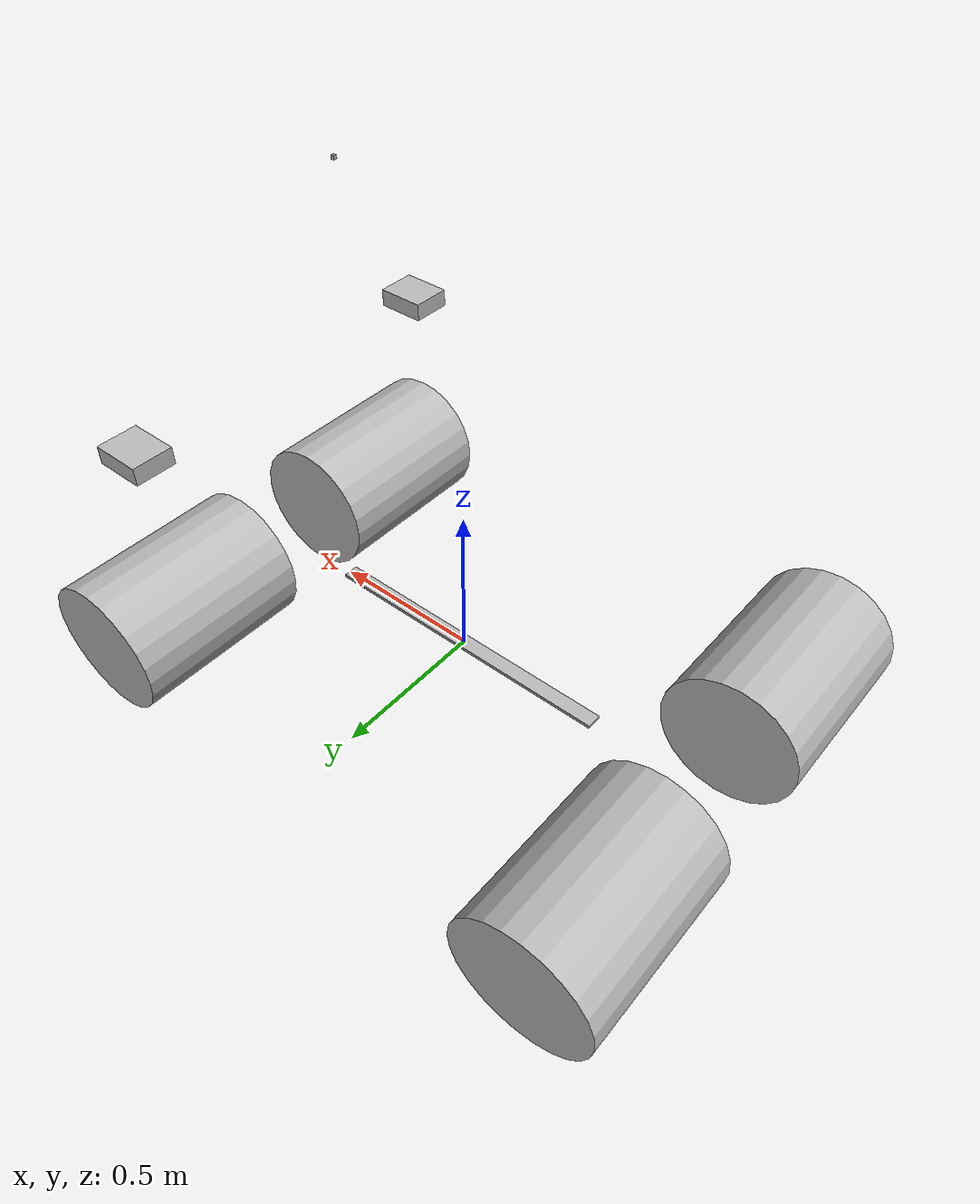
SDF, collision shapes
<?xml version='1.0'?>
<sdf version='1.7'>
  <model name='golfinho'>
    <link name='base_link'>
      <inertial>
        <pose>9e-06 0 1e-05 0 -0 0</pose>
        <mass>320.004</mass>
        <inertia>
          <ixx>9.60649</ixx>
          <ixy>0</ixy>
          <ixz>-0.00173708</ixz>
          <iyy>74.3788</iyy>
          <iyz>0</iyz>
          <izz>83.9737</izz>
        </inertia>
      </inertial>
      <velocity_decay/>
      <velocity_decay/>
      <gravity>1</gravity>
      <sensor name='twr_imu' type='imu'>
        <always_on>1</always_on>
        <update_rate>100</update_rate>
        <visualize>1</visualize>
        <imu>
          <angular_velocity>
            <x>
              <noise type='gaussian'>
                <mean>0</mean>
                <stddev>0.0002</stddev>
              </noise>
            </x>
            <y>
              <noise type='gaussian'>
                <mean>0</mean>
                <stddev>0.0002</stddev>
              </noise>
            </y>
            <z>
              <noise type='gaussian'>
                <mean>0</mean>
                <stddev>0.0002</stddev>
              </noise>
            </z>
          </angular_velocity>
          <linear_acceleration>
            <x>
              <noise type='gaussian'>
                <mean>0</mean>
                <stddev>0.017</stddev>
              </noise>
            </x>
            <y>
              <noise type='gaussian'>
                <mean>0</mean>
                <stddev>0.017</stddev>
              </noise>
            </y>
            <z>
              <noise type='gaussian'>
                <mean>0</mean>
                <stddev>0.017</stddev>
              </noise>
            </z>
          </linear_acceleration>
          <orientation>
            <x>
              <noise type='gaussian'>
                <mean>0.0</mean>
                <stddev>2e-3</stddev>
              </noise>
            </x>
            <y>
              <noise type='gaussian'>
                <mean>0.0</mean>
                <stddev>2e-3</stddev>
              </noise>
            </y>
            <z>
              <noise type='gaussian'>
                <mean>0.0</mean>
                <stddev>2e-3</stddev>
              </noise>
            </z>
          </orientation>
        </imu>
        <plugin name='two_wheeled_robot_imu' filename='libgazebo_ros_imu_sensor.so'>
          <initial_orientation_as_reference>0</initial_orientation_as_reference>
          <frame_name>imu_link</frame_name>
          <ros>
            <argument>~/out:=imu</argument>
          </ros>
        </plugin>
        <pose>-0.1 0 0.05 3.14159 -1.24159 3.14159</pose>
      </sensor>
      <gravity>1</gravity>
      <velocity_decay/>
      <sensor name='block_laser_sensor' type='ray'>
        <visualize>1</visualize>
        <ray>
          <scan>
            <horizontal>
              <samples>200</samples>
              <resolution>1</resolution>
              <min_angle>-0.9</min_angle>
              <max_angle>0.9</max_angle>
            </horizontal>
            <vertical>
              <samples>4</samples>
              <resolution>1</resolution>
              <min_angle>0</min_angle>
              <max_angle>0.05</max_angle>
            </vertical>
          </scan>
          <range>
            <min>0.1</min>
            <max>10</max>
            <resolution>0.01</resolution>
          </range>
        </ray>
        <update_rate>30</update_rate>
        <plugin name='gazebo_ros_block_laser_controller' filename='libgazebo_ros_ray_sensor.so'>
          <ros>
            <argument>~/out:=points2</argument>
          </ros>
          <output_type>sensor_msgs/PointCloud2</output_type>
          <topicName>points2</topicName>
          <frameName>four_layer</frameName>
          <min_intensity>100.0</min_intensity>
        </plugin>
        <pose>1.05 0 0.1 0 -0 0</pose>
      </sensor>
      <self_collide>0</self_collide>
      <enable_wind>0</enable_wind>
      <kinematic>0</kinematic>
      <plugin filename='libgazebo_ros_p3d.so' name='gps'>
        <ros>
          <argument>~/out:=gps</argument>
        </ros>
        <frame_name>map</frame_name>
        <body_name>base_link</body_name>
        <output_type>nav_msgs/Odometry</output_type>
        <update_rate>100.0</update_rate>
        <gaussian_noise>0.0</gaussian_noise>
      </plugin>
      <pose>0 0 0 0 -0 0</pose>
      <visual name='base_link_fixed_joint_lump__visual_0_visual'>
        <pose>-0.08 0 -0.2 0 -0 1.5708</pose>
        <geometry>
          <mesh>
            <scale>0.98 0.85 0.9</scale>
            <uri>file:////home/robsic/golfinho/install/golfinho_model/share/golfinho_model/meshes/base_link.dae</uri>
          </mesh>
        </geometry>
        <material>
          <shader type='pixel'/>
        </material>
        <transparency>0</transparency>
        <cast_shadows>1</cast_shadows>
      </visual>
      <visual name='base_link_fixed_joint_lump__visual_visual_1'>
        <pose>0.4 0 1.4 0 -0 0</pose>
        <geometry>
          <box>
            <size>0.01 0.01 0.01</size>
          </box>
        </geometry>
        <material>
          <shader type='pixel'/>
        </material>
        <transparency>0</transparency>
        <cast_shadows>1</cast_shadows>
      </visual>
      <visual name='base_link_fixed_joint_lump__visual_link_r_visual_2'>
        <pose>1 0 0.03 0 -0 0</pose>
        <geometry>
          <mesh>
            <scale>0.05 0.05 0.05</scale>
            <uri>file:////home/robsic/golfinho/install/golfinho_model/share/golfinho_model/meshes/sick_4camadas.dae</uri>
          </mesh>
        </geometry>
        <material>
          <shader type='pixel'/>
        </material>
        <transparency>0</transparency>
        <cast_shadows>1</cast_shadows>
      </visual>
      <visual name='base_link_fixed_joint_lump__visual_link_l_visual_3'>
        <pose>0.68 0.55 0.59 0 -0 0.7854</pose>
        <geometry>
          <mesh>
            <scale>0.0005 0.0005 0.0005</scale>
            <uri>file:////home/robsic/golfinho/install/golfinho_model/share/golfinho_model/meshes/sick_270.dae</uri>
          </mesh>
        </geometry>
        <material>
          <shader type='pixel'/>
        </material>
        <transparency>0</transparency>
        <cast_shadows>1</cast_shadows>
      </visual>
      <visual name='base_link_fixed_joint_lump__visual_link_r_visual_4'>
        <pose>0.68 -0.55 0.59 0 0 -0.7854</pose>
        <geometry>
          <mesh>
            <scale>0.0005 0.0005 0.0005</scale>
            <uri>/home/robsic/golfinho/install/golfinho_model/share/golfinho_model/meshes/sick_270.dae</uri>
          </mesh>
        </geometry>
        <material>
          <shader type='pixel'/>
        </material>
        <transparency>0</transparency>
        <cast_shadows>1</cast_shadows>
      </visual>
      <collision name='base_link_fixed_joint_lump__collision_collision'>
        <laser_retro>0</laser_retro>
        <max_contacts>10</max_contacts>
        <pose>0 0 0 0 -0 0</pose>
        <geometry>
          <box>
            <size>1 0.05 0.01</size>
          </box>
        </geometry>
        <surface>
          <friction>
            <ode>
              <mu>1</mu>
              <mu2>1</mu2>
              <fdir1>0 0 0</fdir1>
              <slip1>0</slip1>
              <slip2>0</slip2>
            </ode>
            <torsional>
              <coefficient>1</coefficient>
              <patch_radius>0</patch_radius>
              <surface_radius>0</surface_radius>
              <use_patch_radius>1</use_patch_radius>
              <ode>
                <slip>0</slip>
              </ode>
            </torsional>
          </friction>
          <bounce>
            <restitution_coefficient>0</restitution_coefficient>
            <threshold>1e+06</threshold>
          </bounce>
          <contact>
            <collide_without_contact>0</collide_without_contact>
            <collide_without_contact_bitmask>1</collide_without_contact_bitmask>
            <collide_bitmask>1</collide_bitmask>
            <ode>
              <soft_cfm>0</soft_cfm>
              <soft_erp>0.2</soft_erp>
              <kp>1e+13</kp>
              <kd>1</kd>
              <max_vel>0.01</max_vel>
              <min_depth>0</min_depth>
            </ode>
            <bullet>
              <split_impulse>1</split_impulse>
              <split_impulse_penetration_threshold>-0.01</split_impulse_penetration_threshold>
              <soft_cfm>0</soft_cfm>
              <soft_erp>0.2</soft_erp>
              <kp>1e+13</kp>
              <kd>1</kd>
            </bullet>
          </contact>
        </surface>
      </collision>
      <collision name='base_link_fixed_joint_lump__collision_collision_1'>
        <laser_retro>0</laser_retro>
        <max_contacts>10</max_contacts>
        <pose>0.4 0 1.4 0 -0 0</pose>
        <geometry>
          <box>
            <size>0.01 0.01 0.01</size>
          </box>
        </geometry>
        <surface>
          <friction>
            <ode>
              <mu>1</mu>
              <mu2>1</mu2>
              <fdir1>0 0 0</fdir1>
              <slip1>0</slip1>
              <slip2>0</slip2>
            </ode>
            <torsional>
              <coefficient>1</coefficient>
              <patch_radius>0</patch_radius>
              <surface_radius>0</surface_radius>
              <use_patch_radius>1</use_patch_radius>
              <ode>
                <slip>0</slip>
              </ode>
            </torsional>
          </friction>
          <bounce>
            <restitution_coefficient>0</restitution_coefficient>
            <threshold>1e+06</threshold>
          </bounce>
          <contact>
            <collide_without_contact>0</collide_without_contact>
            <collide_without_contact_bitmask>1</collide_without_contact_bitmask>
            <collide_bitmask>1</collide_bitmask>
            <ode>
              <soft_cfm>0</soft_cfm>
              <soft_erp>0.2</soft_erp>
              <kp>1e+13</kp>
              <kd>1</kd>
              <max_vel>0.01</max_vel>
              <min_depth>0</min_depth>
            </ode>
            <bullet>
              <split_impulse>1</split_impulse>
              <split_impulse_penetration_threshold>-0.01</split_impulse_penetration_threshold>
              <soft_cfm>0</soft_cfm>
              <soft_erp>0.2</soft_erp>
              <kp>1e+13</kp>
              <kd>1</kd>
            </bullet>
          </contact>
        </surface>
      </collision>
      <collision name='base_link_fixed_joint_lump__collision_link_l_collision_2'>
        <laser_retro>0</laser_retro>
        <max_contacts>10</max_contacts>
        <pose>0.68 0.55 0.71 0 -0 0</pose>
        <geometry>
          <box>
            <size>0.153353 0.126857 0.054761</size>
          </box>
        </geometry>
        <surface>
          <friction>
            <ode>
              <mu>1</mu>
              <mu2>1</mu2>
              <fdir1>0 0 0</fdir1>
              <slip1>0</slip1>
              <slip2>0</slip2>
            </ode>
            <torsional>
              <coefficient>1</coefficient>
              <patch_radius>0</patch_radius>
              <surface_radius>0</surface_radius>
              <use_patch_radius>1</use_patch_radius>
              <ode>
                <slip>0</slip>
              </ode>
            </torsional>
          </friction>
          <bounce>
            <restitution_coefficient>0</restitution_coefficient>
            <threshold>1e+06</threshold>
          </bounce>
          <contact>
            <collide_without_contact>0</collide_without_contact>
            <collide_without_contact_bitmask>1</collide_without_contact_bitmask>
            <collide_bitmask>1</collide_bitmask>
            <ode>
              <soft_cfm>0</soft_cfm>
              <soft_erp>0.2</soft_erp>
              <kp>1e+13</kp>
              <kd>1</kd>
              <max_vel>0.01</max_vel>
              <min_depth>0</min_depth>
            </ode>
            <bullet>
              <split_impulse>1</split_impulse>
              <split_impulse_penetration_threshold>-0.01</split_impulse_penetration_threshold>
              <soft_cfm>0</soft_cfm>
              <soft_erp>0.2</soft_erp>
              <kp>1e+13</kp>
              <kd>1</kd>
            </bullet>
          </contact>
        </surface>
      </collision>
      <collision name='base_link_fixed_joint_lump__collision_link_r_collision_3'>
        <laser_retro>0</laser_retro>
        <max_contacts>10</max_contacts>
        <pose>0.68 -0.55 0.71 0 -0 0</pose>
        <geometry>
          <box>
            <size>0.153353 0.126857 0.054761</size>
          </box>
        </geometry>
        <surface>
          <friction>
            <ode>
              <mu>1</mu>
              <mu2>1</mu2>
              <fdir1>0 0 0</fdir1>
              <slip1>0</slip1>
              <slip2>0</slip2>
            </ode>
            <torsional>
              <coefficient>1</coefficient>
              <patch_radius>0</patch_radius>
              <surface_radius>0</surface_radius>
              <use_patch_radius>1</use_patch_radius>
              <ode>
                <slip>0</slip>
              </ode>
            </torsional>
          </friction>
          <bounce>
            <restitution_coefficient>0</restitution_coefficient>
            <threshold>1e+06</threshold>
          </bounce>
          <contact>
            <collide_without_contact>0</collide_without_contact>
            <collide_without_contact_bitmask>1</collide_without_contact_bitmask>
            <collide_bitmask>1</collide_bitmask>
            <ode>
              <soft_cfm>0</soft_cfm>
              <soft_erp>0.2</soft_erp>
              <kp>1e+13</kp>
              <kd>1</kd>
              <max_vel>0.01</max_vel>
              <min_depth>0</min_depth>
            </ode>
            <bullet>
              <split_impulse>1</split_impulse>
              <split_impulse_penetration_threshold>-0.01</split_impulse_penetration_threshold>
              <soft_cfm>0</soft_cfm>
              <soft_erp>0.2</soft_erp>
              <kp>1e+13</kp>
              <kd>1</kd>
            </bullet>
          </contact>
        </surface>
      </collision>
    </link>
    <link name='back_left_wheel'>
      <pose>-0.835 0.485 0 -1.5708 -0 -0</pose>
      <inertial>
        <pose>0 0 0 0 -0 0</pose>
        <mass>37.3751</mass>
        <inertia>
          <ixx>0.597613</ixx>
          <ixy>0</ixy>
          <ixz>0</ixz>
          <iyy>0.597613</iyy>
          <iyz>0</iyz>
          <izz>0.946058</izz>
        </inertia>
      </inertial>
      <gravity>1</gravity>
      <velocity_decay/>
      <self_collide>0</self_collide>
      <enable_wind>0</enable_wind>
      <kinematic>0</kinematic>
      <visual name='back_left_wheel_visual_0_visual'>
        <pose>0 0.38 0 1.5708 -0 0</pose>
        <geometry>
          <mesh>
            <scale>0.13 0.08 0.13</scale>
            <uri>file:////home/robsic/golfinho/install/golfinho_model/share/golfinho_model/meshes/wheel_.dae</uri>
          </mesh>
        </geometry>
        <material>
          <shader type='pixel'/>
        </material>
        <transparency>0</transparency>
        <cast_shadows>1</cast_shadows>
      </visual>
      <collision name='back_left_wheel_collision_collision'>
        <laser_retro>0</laser_retro>
        <max_contacts>10</max_contacts>
        <pose>0 0 0 0 -0 0</pose>
        <geometry>
          <cylinder>
            <radius>0.225</radius>
            <length>0.6</length>
          </cylinder>
        </geometry>
        <surface>
          <friction>
            <ode>
              <mu>1</mu>
              <mu2>1</mu2>
              <fdir1>0 0 0</fdir1>
              <slip1>0</slip1>
              <slip2>0</slip2>
            </ode>
            <torsional>
              <coefficient>1</coefficient>
              <patch_radius>0</patch_radius>
              <surface_radius>0</surface_radius>
              <use_patch_radius>1</use_patch_radius>
              <ode>
                <slip>0</slip>
              </ode>
            </torsional>
          </friction>
          <bounce>
            <restitution_coefficient>0</restitution_coefficient>
            <threshold>1e+06</threshold>
          </bounce>
          <contact>
            <collide_without_contact>0</collide_without_contact>
            <collide_without_contact_bitmask>1</collide_without_contact_bitmask>
            <collide_bitmask>1</collide_bitmask>
            <ode>
              <soft_cfm>0</soft_cfm>
              <soft_erp>0.2</soft_erp>
              <kp>1e+07</kp>
              <kd>1</kd>
              <max_vel>0.01</max_vel>
              <min_depth>0</min_depth>
            </ode>
            <bullet>
              <split_impulse>1</split_impulse>
              <split_impulse_penetration_threshold>-0.01</split_impulse_penetration_threshold>
              <soft_cfm>0</soft_cfm>
              <soft_erp>0.2</soft_erp>
              <kp>1e+07</kp>
              <kd>1</kd>
            </bullet>
          </contact>
        </surface>
      </collision>
    </link>
    <link name='back_right_wheel'>
      <pose>-0.835 -0.485 0 -1.5708 -0 -0</pose>
      <inertial>
        <pose>0 0 0 0 -0 0</pose>
        <mass>37.3751</mass>
        <inertia>
          <ixx>0.597613</ixx>
          <ixy>0</ixy>
          <ixz>0</ixz>
          <iyy>0.597613</iyy>
          <iyz>0</iyz>
          <izz>0.946058</izz>
        </inertia>
      </inertial>
      <gravity>1</gravity>
      <velocity_decay/>
      <self_collide>0</self_collide>
      <enable_wind>0</enable_wind>
      <kinematic>0</kinematic>
      <visual name='back_right_wheel_fixed_joint_lump__back_left_wheel_visual_0_visual'>
        <pose>0 -0.38 0 -1.5708 0 0</pose>
        <geometry>
          <mesh>
            <scale>0.13 0.08 0.13</scale>
            <uri>file:////home/robsic/golfinho/install/golfinho_model/share/golfinho_model/meshes/wheel_.dae</uri>
          </mesh>
        </geometry>
        <material>
          <shader type='pixel'/>
        </material>
        <transparency>0</transparency>
        <cast_shadows>1</cast_shadows>
      </visual>
      <collision name='back_right_wheel_collision_collision'>
        <laser_retro>0</laser_retro>
        <max_contacts>10</max_contacts>
        <pose>0 0 0 0 -0 0</pose>
        <geometry>
          <cylinder>
            <radius>0.225</radius>
            <length>0.6</length>
          </cylinder>
        </geometry>
        <surface>
          <friction>
            <ode>
              <mu>1</mu>
              <mu2>1</mu2>
              <fdir1>0 0 0</fdir1>
              <slip1>0</slip1>
              <slip2>0</slip2>
            </ode>
            <torsional>
              <coefficient>1</coefficient>
              <patch_radius>0</patch_radius>
              <surface_radius>0</surface_radius>
              <use_patch_radius>1</use_patch_radius>
              <ode>
                <slip>0</slip>
              </ode>
            </torsional>
          </friction>
          <bounce>
            <restitution_coefficient>0</restitution_coefficient>
            <threshold>1e+06</threshold>
          </bounce>
          <contact>
            <collide_without_contact>0</collide_without_contact>
            <collide_without_contact_bitmask>1</collide_without_contact_bitmask>
            <collide_bitmask>1</collide_bitmask>
            <ode>
              <soft_cfm>0</soft_cfm>
              <soft_erp>0.2</soft_erp>
              <kp>1e+07</kp>
              <kd>1</kd>
              <max_vel>0.01</max_vel>
              <min_depth>0</min_depth>
            </ode>
            <bullet>
              <split_impulse>1</split_impulse>
              <split_impulse_penetration_threshold>-0.01</split_impulse_penetration_threshold>
              <soft_cfm>0</soft_cfm>
              <soft_erp>0.2</soft_erp>
              <kp>1e+07</kp>
              <kd>1</kd>
            </bullet>
          </contact>
        </surface>
      </collision>
    </link>
    <link name='front_left_mount'>
      <pose>0.835 0.45 0 -1.5708 -0 -0</pose>
      <inertial>
        <pose>0 0 0 0 -0 0</pose>
        <mass>0.00064182</mass>
        <inertia>
          <ixx>2.11e-06</ixx>
          <ixy>0</ixy>
          <ixz>0</ixz>
          <iyy>2.11e-06</iyy>
          <iyz>0</iyz>
          <izz>2.7e-07</izz>
        </inertia>
      </inertial>
      <gravity>1</gravity>
      <velocity_decay/>
      <self_collide>0</self_collide>
      <enable_wind>0</enable_wind>
      <kinematic>0</kinematic>
      <visual name='front_left_mount_visual_visual'>
        <pose>0 0 0 1.5708 -0 0</pose>
        <geometry>
          <cylinder>
            <length>0.0001</length>
            <radius>0.0001</radius>
          </cylinder>
        </geometry>
        <material>
          <shader type='pixel'/>
        </material>
        <transparency>0</transparency>
        <cast_shadows>1</cast_shadows>
      </visual>
      <collision name='front_left_mount_collision_collision'>
        <laser_retro>0</laser_retro>
        <max_contacts>10</max_contacts>
        <pose>0 0 0 0 -0 0</pose>
        <geometry>
          <cylinder>
            <radius>0.115</radius>
            <length>0.072407</length>
          </cylinder>
        </geometry>
        <surface>
          <friction>
            <ode>
              <mu>1</mu>
              <mu2>1</mu2>
              <fdir1>0 0 0</fdir1>
              <slip1>0</slip1>
              <slip2>0</slip2>
            </ode>
            <torsional>
              <coefficient>1</coefficient>
              <patch_radius>0</patch_radius>
              <surface_radius>0</surface_radius>
              <use_patch_radius>1</use_patch_radius>
              <ode>
                <slip>0</slip>
              </ode>
            </torsional>
          </friction>
          <bounce>
            <restitution_coefficient>0</restitution_coefficient>
            <threshold>1e+06</threshold>
          </bounce>
          <contact>
            <collide_without_contact>0</collide_without_contact>
            <collide_without_contact_bitmask>1</collide_without_contact_bitmask>
            <collide_bitmask>1</collide_bitmask>
            <ode>
              <soft_cfm>0</soft_cfm>
              <soft_erp>0.2</soft_erp>
              <kp>1e+07</kp>
              <kd>1</kd>
              <max_vel>0.01</max_vel>
              <min_depth>0</min_depth>
            </ode>
            <bullet>
              <split_impulse>1</split_impulse>
              <split_impulse_penetration_threshold>-0.01</split_impulse_penetration_threshold>
              <soft_cfm>0</soft_cfm>
              <soft_erp>0.2</soft_erp>
              <kp>1e+07</kp>
              <kd>1</kd>
            </bullet>
          </contact>
        </surface>
      </collision>
    </link>
    <link name='front_left_wheel'>
      <pose>0.835 0.45 0 -1.5708 -0 -0</pose>
      <inertial>
        <pose>0 0 0 0 -0 0</pose>
        <mass>37.3751</mass>
        <inertia>
          <ixx>0.597613</ixx>
          <ixy>0</ixy>
          <ixz>0</ixz>
          <iyy>0.597613</iyy>
          <iyz>0</iyz>
          <izz>0.946058</izz>
        </inertia>
      </inertial>
      <gravity>1</gravity>
      <velocity_decay/>
      <self_collide>0</self_collide>
      <enable_wind>0</enable_wind>
      <kinematic>0</kinematic>
      <visual name='front_left_wheel_visual_0_visual'>
        <pose>0 -0.38 0 -1.5708 0 0</pose>
        <geometry>
          <mesh>
            <scale>0.13 0.08 0.13</scale>
            <uri>file:////home/robsic/golfinho/install/golfinho_model/share/golfinho_model/meshes/wheel_.dae</uri>
          </mesh>
        </geometry>
        <material>
          <shader type='pixel'/>
        </material>
        <transparency>0</transparency>
        <cast_shadows>1</cast_shadows>
      </visual>
      <collision name='front_left_wheel_collision_collision'>
        <laser_retro>0</laser_retro>
        <max_contacts>10</max_contacts>
        <pose>0 0 0 0 -0 0</pose>
        <geometry>
          <cylinder>
            <radius>0.225</radius>
            <length>0.6</length>
          </cylinder>
        </geometry>
        <surface>
          <friction>
            <ode>
              <mu>1</mu>
              <mu2>1</mu2>
              <fdir1>0 0 0</fdir1>
              <slip1>0</slip1>
              <slip2>0</slip2>
            </ode>
            <torsional>
              <coefficient>1</coefficient>
              <patch_radius>0</patch_radius>
              <surface_radius>0</surface_radius>
              <use_patch_radius>1</use_patch_radius>
              <ode>
                <slip>0</slip>
              </ode>
            </torsional>
          </friction>
          <bounce>
            <restitution_coefficient>0</restitution_coefficient>
            <threshold>1e+06</threshold>
          </bounce>
          <contact>
            <collide_without_contact>0</collide_without_contact>
            <collide_without_contact_bitmask>1</collide_without_contact_bitmask>
            <collide_bitmask>1</collide_bitmask>
            <ode>
              <soft_cfm>0</soft_cfm>
              <soft_erp>0.2</soft_erp>
              <kp>1e+07</kp>
              <kd>1</kd>
              <max_vel>0.01</max_vel>
              <min_depth>0</min_depth>
            </ode>
            <bullet>
              <split_impulse>1</split_impulse>
              <split_impulse_penetration_threshold>-0.01</split_impulse_penetration_threshold>
              <soft_cfm>0</soft_cfm>
              <soft_erp>0.2</soft_erp>
              <kp>1e+07</kp>
              <kd>1</kd>
            </bullet>
          </contact>
        </surface>
      </collision>
    </link>
    <link name='front_right_mount'>
      <pose>0.835 -0.45 -0 -1.5708 -0 -0</pose>
      <inertial>
        <pose>0 0 0 0 -0 0</pose>
        <mass>0.00064182</mass>
        <inertia>
          <ixx>2.11e-06</ixx>
          <ixy>0</ixy>
          <ixz>0</ixz>
          <iyy>2.11e-06</iyy>
          <iyz>0</iyz>
          <izz>2.7e-07</izz>
        </inertia>
      </inertial>
      <gravity>1</gravity>
      <velocity_decay/>
      <self_collide>0</self_collide>
      <enable_wind>0</enable_wind>
      <kinematic>0</kinematic>
      <visual name='front_right_mount_visual_visual'>
        <pose>0 0 0 1.5708 -0 0</pose>
        <geometry>
          <cylinder>
            <length>0.0001</length>
            <radius>0.0001</radius>
          </cylinder>
        </geometry>
        <material>
          <shader type='pixel'/>
        </material>
        <transparency>0</transparency>
        <cast_shadows>1</cast_shadows>
      </visual>
      <collision name='front_right_mount_collision_collision'>
        <laser_retro>0</laser_retro>
        <max_contacts>10</max_contacts>
        <pose>0 0 0 0 -0 0</pose>
        <geometry>
          <cylinder>
            <radius>0.115</radius>
            <length>0.072407</length>
          </cylinder>
        </geometry>
        <surface>
          <friction>
            <ode>
              <mu>1</mu>
              <mu2>1</mu2>
              <fdir1>0 0 0</fdir1>
              <slip1>0</slip1>
              <slip2>0</slip2>
            </ode>
            <torsional>
              <coefficient>1</coefficient>
              <patch_radius>0</patch_radius>
              <surface_radius>0</surface_radius>
              <use_patch_radius>1</use_patch_radius>
              <ode>
                <slip>0</slip>
              </ode>
            </torsional>
          </friction>
          <bounce>
            <restitution_coefficient>0</restitution_coefficient>
            <threshold>1e+06</threshold>
          </bounce>
          <contact>
            <collide_without_contact>0</collide_without_contact>
            <collide_without_contact_bitmask>1</collide_without_contact_bitmask>
            <collide_bitmask>1</collide_bitmask>
            <ode>
              <soft_cfm>0</soft_cfm>
              <soft_erp>0.2</soft_erp>
              <kp>1e+07</kp>
              <kd>1</kd>
              <max_vel>0.01</max_vel>
              <min_depth>0</min_depth>
            </ode>
            <bullet>
              <split_impulse>1</split_impulse>
              <split_impulse_penetration_threshold>-0.01</split_impulse_penetration_threshold>
              <soft_cfm>0</soft_cfm>
              <soft_erp>0.2</soft_erp>
              <kp>1e+07</kp>
              <kd>1</kd>
            </bullet>
          </contact>
        </surface>
      </collision>
    </link>
    <link name='front_right_wheel'>
      <pose>0.835 -0.45 -0 -1.5708 -0 -0</pose>
      <inertial>
        <pose>0 0 0 0 -0 0</pose>
        <mass>37.3751</mass>
        <inertia>
          <ixx>0.597613</ixx>
          <ixy>0</ixy>
          <ixz>0</ixz>
          <iyy>0.597613</iyy>
          <iyz>0</iyz>
          <izz>0.946058</izz>
        </inertia>
      </inertial>
      <gravity>1</gravity>
      <velocity_decay/>
      <self_collide>0</self_collide>
      <enable_wind>0</enable_wind>
      <kinematic>0</kinematic>
      <visual name='front_right_wheel_visual_0_visual'>
        <pose>0 0.38 0 1.5708 -0 0</pose>
        <geometry>
          <mesh>
            <scale>0.13 0.08 0.13</scale>
            <uri>file:////home/robsic/golfinho/install/golfinho_model/share/golfinho_model/meshes/wheel_.dae</uri>
          </mesh>
        </geometry>
        <material>
          <shader type='pixel'/>
        </material>
        <transparency>0</transparency>
        <cast_shadows>1</cast_shadows>
      </visual>
      <collision name='front_right_wheel_collision_collision'>
        <laser_retro>0</laser_retro>
        <max_contacts>10</max_contacts>
        <pose>0 0 0 0 -0 0</pose>
        <geometry>
          <cylinder>
            <radius>0.225</radius>
            <length>0.6</length>
          </cylinder>
        </geometry>
        <surface>
          <friction>
            <ode>
              <mu>1</mu>
              <mu2>1</mu2>
              <fdir1>0 0 0</fdir1>
              <slip1>0</slip1>
              <slip2>0</slip2>
            </ode>
            <torsional>
              <coefficient>1</coefficient>
              <patch_radius>0</patch_radius>
              <surface_radius>0</surface_radius>
              <use_patch_radius>1</use_patch_radius>
              <ode>
                <slip>0</slip>
              </ode>
            </torsional>
          </friction>
          <bounce>
            <restitution_coefficient>0</restitution_coefficient>
            <threshold>1e+06</threshold>
          </bounce>
          <contact>
            <collide_without_contact>0</collide_without_contact>
            <collide_without_contact_bitmask>1</collide_without_contact_bitmask>
            <collide_bitmask>1</collide_bitmask>
            <ode>
              <soft_cfm>0</soft_cfm>
              <soft_erp>0.2</soft_erp>
              <kp>1e+07</kp>
              <kd>1</kd>
              <max_vel>0.01</max_vel>
              <min_depth>0</min_depth>
            </ode>
            <bullet>
              <split_impulse>1</split_impulse>
              <split_impulse_penetration_threshold>-0.01</split_impulse_penetration_threshold>
              <soft_cfm>0</soft_cfm>
              <soft_erp>0.2</soft_erp>
              <kp>1e+07</kp>
              <kd>1</kd>
            </bullet>
          </contact>
        </surface>
      </collision>
    </link>
    <link name='steering'>
      <pose>0.194763 0.27693 0.818981 1e-06 -0.872602 -6.8e-05</pose>
      <inertial>
        <pose>0 0 0 0 -0 0</pose>
        <mass>0.00016233</mass>
        <inertia>
          <ixx>6e-08</ixx>
          <ixy>0</ixy>
          <ixz>0</ixz>
          <iyy>6e-08</iyy>
          <iyz>0</iyz>
          <izz>8e-08</izz>
        </inertia>
      </inertial>
      <self_collide>0</self_collide>
      <enable_wind>0</enable_wind>
      <kinematic>0</kinematic>
      <visual name='steering_fixed_joint_lump__visual_visual'>
        <pose>0 0 -0.07 1.4108 -0 0</pose>
        <geometry>
          <mesh>
            <scale>0.1 0.1 0.1</scale>
            <uri>file:////home/robsic/golfinho/install/golfinho_model/share/golfinho_model/meshes/steering.dae</uri>
          </mesh>
        </geometry>
        <material>
          <shader type='pixel'/>
        </material>
        <transparency>0</transparency>
        <cast_shadows>1</cast_shadows>
      </visual>
      <collision name='steering_fixed_joint_lump__collision_collision'>
        <laser_retro>0</laser_retro>
        <max_contacts>10</max_contacts>
        <pose>-0.012 -0.01 -0.04 0 -0 0</pose>
        <geometry>
          <cylinder>
            <radius>0.0001</radius>
            <length>0.0001</length>
          </cylinder>
        </geometry>
        <surface>
          <friction>
            <ode>
              <mu>1</mu>
              <mu2>1</mu2>
              <fdir1>0 0 0</fdir1>
              <slip1>0</slip1>
              <slip2>0</slip2>
            </ode>
            <torsional>
              <coefficient>1</coefficient>
              <patch_radius>0</patch_radius>
              <surface_radius>0</surface_radius>
              <use_patch_radius>1</use_patch_radius>
              <ode>
                <slip>0</slip>
              </ode>
            </torsional>
          </friction>
          <bounce>
            <restitution_coefficient>0</restitution_coefficient>
            <threshold>1e+06</threshold>
          </bounce>
          <contact>
            <collide_without_contact>0</collide_without_contact>
            <collide_without_contact_bitmask>1</collide_without_contact_bitmask>
            <collide_bitmask>1</collide_bitmask>
            <ode>
              <soft_cfm>0</soft_cfm>
              <soft_erp>0.2</soft_erp>
              <kp>1e+13</kp>
              <kd>1</kd>
              <max_vel>0.01</max_vel>
              <min_depth>0</min_depth>
            </ode>
            <bullet>
              <split_impulse>1</split_impulse>
              <split_impulse_penetration_threshold>-0.01</split_impulse_penetration_threshold>
              <soft_cfm>0</soft_cfm>
              <soft_erp>0.2</soft_erp>
              <kp>1e+13</kp>
              <kd>1</kd>
            </bullet>
          </contact>
        </surface>
      </collision>
    </link>
    <joint name='back_left_wheel_joint' type='revolute'>
      <parent>base_link</parent>
      <child>back_left_wheel</child>
      <pose>0 -0 0 0 -0 0</pose>
      <axis>
        <xyz>0 0 1</xyz>
        <limit>
          <lower>-1e+16</lower>
          <upper>1e+16</upper>
          <effort>-1</effort>
          <velocity>-1</velocity>
        </limit>
        <dynamics>
          <spring_reference>0</spring_reference>
          <spring_stiffness>0</spring_stiffness>
          <damping>0</damping>
          <friction>0</friction>
        </dynamics>
      </axis>
      <physics>
        <ode>
          <limit>
            <cfm>0</cfm>
            <erp>0.2</erp>
          </limit>
          <suspension>
            <cfm>0</cfm>
            <erp>0.2</erp>
          </suspension>
        </ode>
      </physics>
    </joint>
    <joint name='back_right_wheel_joint' type='revolute'>
      <parent>base_link</parent>
      <child>back_right_wheel</child>
      <pose>0 0 -0 0 -0 0</pose>
      <axis>
        <xyz>0 0 1</xyz>
        <limit>
          <lower>-1e+16</lower>
          <upper>1e+16</upper>
          <effort>-1</effort>
          <velocity>-1</velocity>
        </limit>
        <dynamics>
          <spring_reference>0</spring_reference>
          <spring_stiffness>0</spring_stiffness>
          <damping>0</damping>
          <friction>0</friction>
        </dynamics>
      </axis>
      <physics>
        <ode>
          <limit>
            <cfm>0</cfm>
            <erp>0.2</erp>
          </limit>
          <suspension>
            <cfm>0</cfm>
            <erp>0.2</erp>
          </suspension>
        </ode>
      </physics>
    </joint>
    <joint name='front_left_mount_joint' type='revolute'>
      <parent>base_link</parent>
      <child>front_left_mount</child>
      <pose>0 -0 0 0 -0 0</pose>
      <axis>
        <xyz>0 -1 0</xyz>
        <limit>
          <lower>-1e+16</lower>
          <upper>1e+16</upper>
          <effort>-1</effort>
          <velocity>-1</velocity>
        </limit>
        <dynamics>
          <spring_reference>0</spring_reference>
          <spring_stiffness>0</spring_stiffness>
          <damping>0</damping>
          <friction>0</friction>
        </dynamics>
      </axis>
      <physics>
        <ode>
          <limit>
            <cfm>0</cfm>
            <erp>0.2</erp>
          </limit>
          <suspension>
            <cfm>0</cfm>
            <erp>0.2</erp>
          </suspension>
        </ode>
      </physics>
    </joint>
    <joint name='front_left_wheel_joint' type='revolute'>
      <parent>front_left_mount</parent>
      <child>front_left_wheel</child>
      <pose>0 -0 0 0 -0 0</pose>
      <axis>
        <xyz>0 0 1</xyz>
        <limit>
          <lower>-1e+16</lower>
          <upper>1e+16</upper>
          <effort>-1</effort>
          <velocity>-1</velocity>
        </limit>
        <dynamics>
          <spring_reference>0</spring_reference>
          <spring_stiffness>0</spring_stiffness>
          <damping>0</damping>
          <friction>0</friction>
        </dynamics>
      </axis>
      <physics>
        <ode>
          <limit>
            <cfm>0</cfm>
            <erp>0.2</erp>
          </limit>
          <suspension>
            <cfm>0</cfm>
            <erp>0.2</erp>
          </suspension>
        </ode>
      </physics>
    </joint>
    <joint name='front_right_mount_joint' type='revolute'>
      <parent>base_link</parent>
      <child>front_right_mount</child>
      <pose>0 0 -0 0 -0 0</pose>
      <axis>
        <xyz>0 -1 0</xyz>
        <limit>
          <lower>-1e+16</lower>
          <upper>1e+16</upper>
          <effort>-1</effort>
          <velocity>-1</velocity>
        </limit>
        <dynamics>
          <spring_reference>0</spring_reference>
          <spring_stiffness>0</spring_stiffness>
          <damping>0</damping>
          <friction>0</friction>
        </dynamics>
      </axis>
      <physics>
        <ode>
          <limit>
            <cfm>0</cfm>
            <erp>0.2</erp>
          </limit>
          <suspension>
            <cfm>0</cfm>
            <erp>0.2</erp>
          </suspension>
        </ode>
      </physics>
    </joint>
    <joint name='front_right_wheel_joint' type='revolute'>
      <parent>front_right_mount</parent>
      <child>front_right_wheel</child>
      <pose>0 0 -0 0 -0 0</pose>
      <axis>
        <xyz>0 0 1</xyz>
        <limit>
          <lower>-1e+16</lower>
          <upper>1e+16</upper>
          <effort>-1</effort>
          <velocity>-1</velocity>
        </limit>
        <dynamics>
          <spring_reference>0</spring_reference>
          <spring_stiffness>0</spring_stiffness>
          <damping>0</damping>
          <friction>0</friction>
        </dynamics>
      </axis>
      <physics>
        <ode>
          <limit>
            <cfm>0</cfm>
            <erp>0.2</erp>
          </limit>
          <suspension>
            <cfm>0</cfm>
            <erp>0.2</erp>
          </suspension>
        </ode>
      </physics>
    </joint>
    <joint name='steering_joint' type='revolute'>
      <parent>base_link</parent>
      <child>steering</child>
      <pose>0 0 0 0 -0 0</pose>
      <axis>
        <xyz>0 0 -1</xyz>
        <limit>
          <lower>-1e+16</lower>
          <upper>1e+16</upper>
          <effort>-1</effort>
          <velocity>-1</velocity>
        </limit>
        <dynamics>
          <spring_reference>0</spring_reference>
          <spring_stiffness>0</spring_stiffness>
          <damping>0</damping>
          <friction>0</friction>
        </dynamics>
      </axis>
      <physics>
        <ode>
          <limit>
            <cfm>0</cfm>
            <erp>0.2</erp>
          </limit>
          <suspension>
            <cfm>0</cfm>
            <erp>0.2</erp>
          </suspension>
        </ode>
      </physics>
    </joint>
    <static>0</static>
    <allow_auto_disable>1</allow_auto_disable>
    <plugin name='ackermann_drive' filename='libgazebo_ros_ackermann_drive.so'>
      <update_rate>100.0</update_rate>
      <front_left_joint>front_left_wheel_joint</front_left_joint>
      <front_right_joint>front_right_wheel_joint</front_right_joint>
      <rear_left_joint>back_left_wheel_joint</rear_left_joint>
      <rear_right_joint>back_right_wheel_joint</rear_right_joint>
      <left_steering_joint>front_left_mount_joint</left_steering_joint>
      <right_steering_joint>front_right_mount_joint</right_steering_joint>
      <steering_wheel_joint>steering_joint</steering_wheel_joint>
      <max_steer>0.523</max_steer>
      <max_steering_angle>9.42</max_steering_angle>
      <max_speed>20</max_speed>
      <left_steering_pid_gain>6000 0 1</left_steering_pid_gain>
      <left_steering_i_range>0 0</left_steering_i_range>
      <right_steering_pid_gain>6000 0 1</right_steering_pid_gain>
      <right_steering_i_range>0 0</right_steering_i_range>
      <linear_velocity_pid_gain>1000 0 1</linear_velocity_pid_gain>
      <linear_velocity_i_range>0 0</linear_velocity_i_range>
      <publish_odom>1</publish_odom>
      <publish_odom_tf>1</publish_odom_tf>
      <publish_wheel_tf>1</publish_wheel_tf>
      <publish_distance>1</publish_distance>
      <odometry_frame>odom</odometry_frame>
      <robot_base_frame>base_link</robot_base_frame>
    </plugin>
    <plugin name='gazebo_ros_joint_pose_trajectory' filename='libgazebo_ros_joint_pose_trajectory.so'>
      <update_rate>50</update_rate>
    </plugin>
    <plugin name='laser_link_right' filename='libgazebo_ros_joint_pose_trajectory.so'>
      <ros/>
      <update_rate>30</update_rate>
    </plugin>
  </model>
</sdf>
